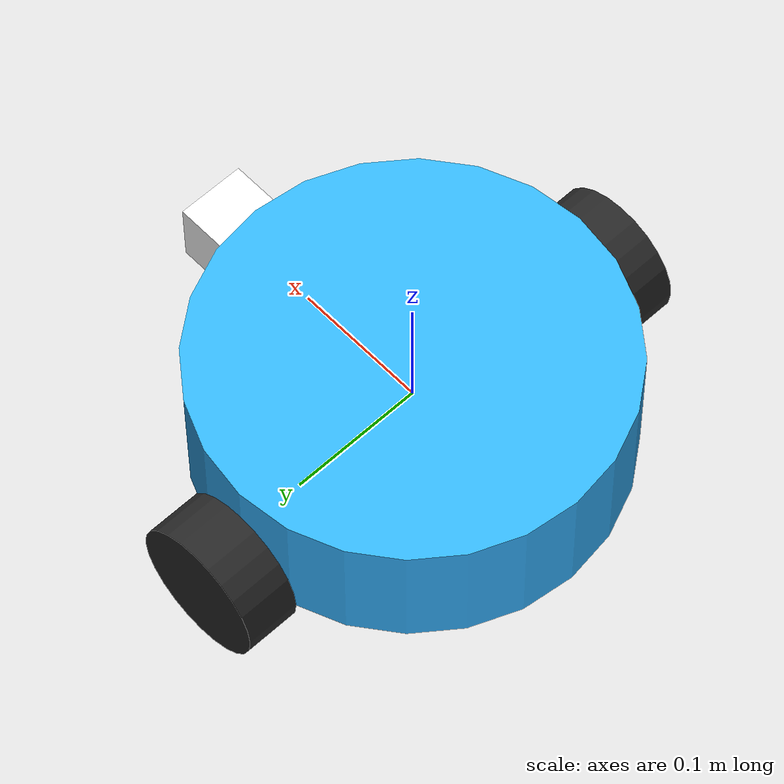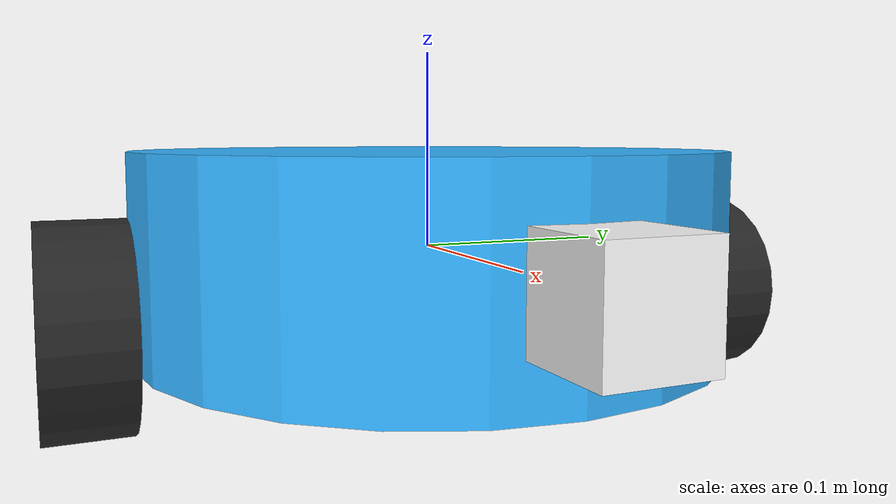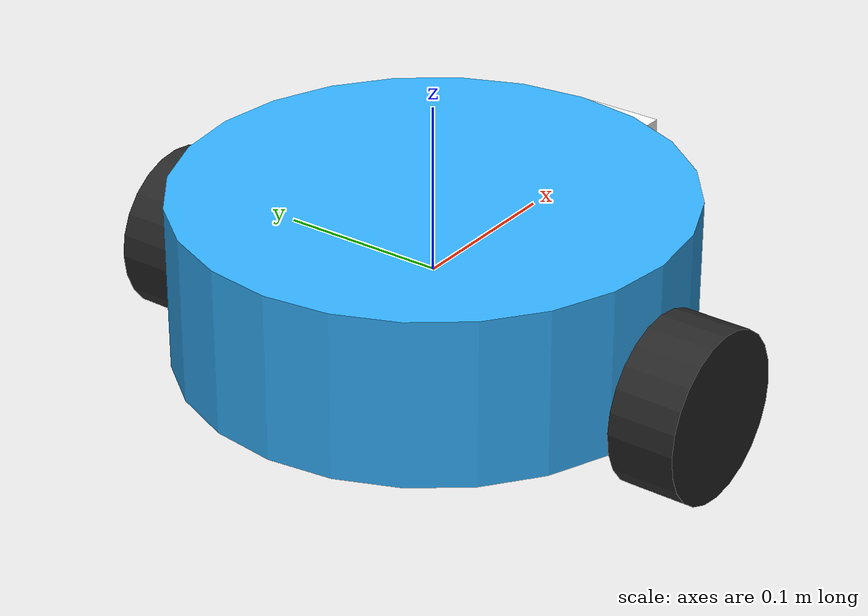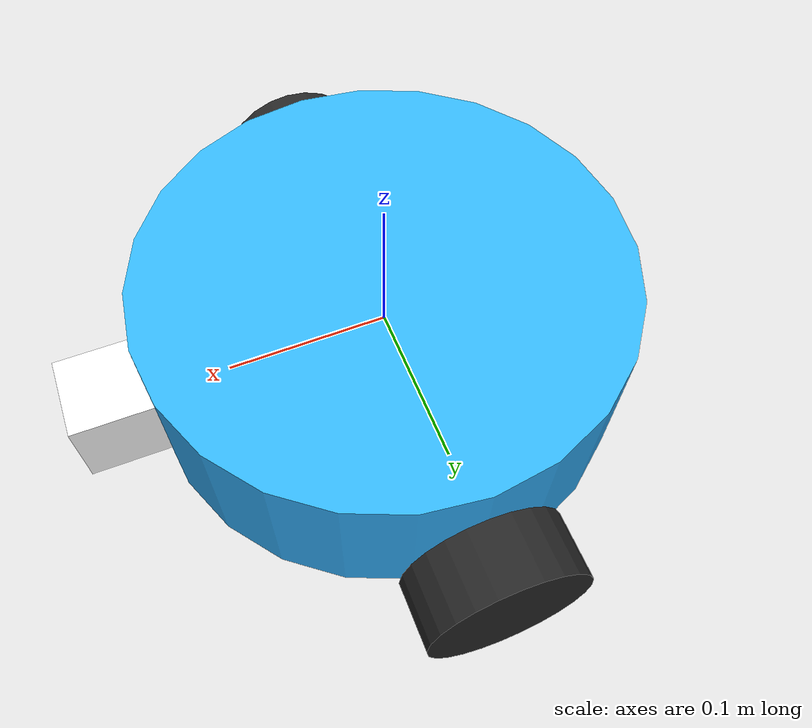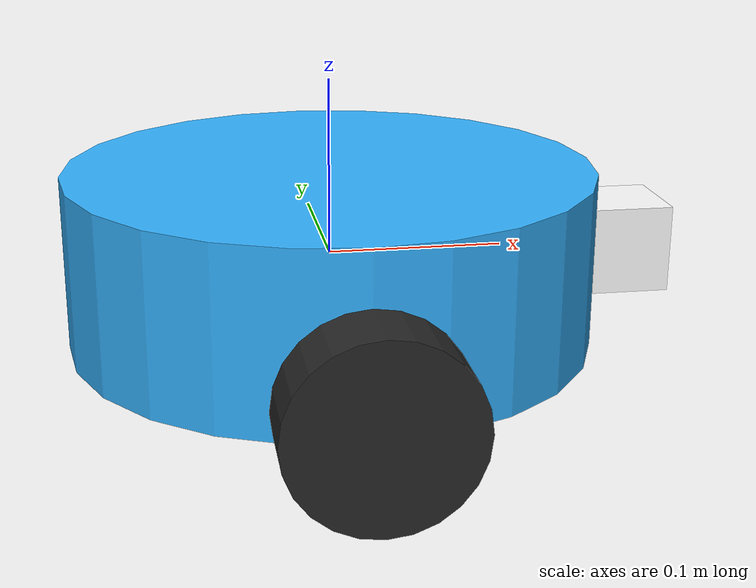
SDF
<?xml version="1.0"?>
<sdf version="1.6">
  <model name="robot1">

    <link name="base_link">
      <inertial>
        <mass>1.5</mass>
        <inertia><ixx>0.02</ixx><ixy>0</ixy><ixz>0</ixz>
                 <iyy>0.02</iyy><iyz>0</iyz><izz>0.03</izz></inertia>
      </inertial>
      <collision name="col">
        <geometry><cylinder><radius>0.15</radius><length>0.10</length></cylinder></geometry>
      </collision>
      <visual name="body">
        <geometry><cylinder><radius>0.15</radius><length>0.10</length></cylinder></geometry>
        <material>
          <ambient>0.2 0.7 1.0 1</ambient>
          <diffuse>0.2 0.7 1.0 1</diffuse>
        </material>
      </visual>
      <visual name="nose">
        <pose>0.16 0 0 0 0 0</pose>
        <geometry><box><size>0.07 0.05 0.05</size></box></geometry>
        <material><ambient>1 1 1 1</ambient><diffuse>1 1 1 1</diffuse></material>
      </visual>
    </link>

    <link name="left_wheel">
      <pose>0 0.17 -0.03 -1.5708 0 0</pose>
      <inertial><mass>0.1</mass>
        <inertia><ixx>0.0001</ixx><iyy>0.0001</iyy><izz>0.0001</izz></inertia>
      </inertial>
      <collision name="col">
        <geometry><cylinder><radius>0.05</radius><length>0.04</length></cylinder></geometry>
      </collision>
      <visual name="vis">
        <geometry><cylinder><radius>0.05</radius><length>0.04</length></cylinder></geometry>
        <material><ambient>0.15 0.15 0.15 1</ambient><diffuse>0.15 0.15 0.15 1</diffuse></material>
      </visual>
    </link>

    <link name="right_wheel">
      <pose>0 -0.17 -0.03 -1.5708 0 0</pose>
      <inertial><mass>0.1</mass>
        <inertia><ixx>0.0001</ixx><iyy>0.0001</iyy><izz>0.0001</izz></inertia>
      </inertial>
      <collision name="col">
        <geometry><cylinder><radius>0.05</radius><length>0.04</length></cylinder></geometry>
      </collision>
      <visual name="vis">
        <geometry><cylinder><radius>0.05</radius><length>0.04</length></cylinder></geometry>
        <material><ambient>0.15 0.15 0.15 1</ambient><diffuse>0.15 0.15 0.15 1</diffuse></material>
      </visual>
    </link>

    <joint name="left_wheel_joint" type="revolute">
      <parent>base_link</parent><child>left_wheel</child>
      <axis><xyz>0 0 1</xyz>
        <limit><lower>-1e16</lower><upper>1e16</upper></limit></axis>
    </joint>

    <joint name="right_wheel_joint" type="revolute">
      <parent>base_link</parent><child>right_wheel</child>
      <axis><xyz>0 0 1</xyz>
        <limit><lower>-1e16</lower><upper>1e16</upper></limit></axis>
    </joint>

    <!-- Explicit full topic paths so each robot gets its own scoped topic -->
    <plugin filename="gz-sim-diff-drive-system"
            name="gz::sim::systems::DiffDrive">
      <left_joint>left_wheel_joint</left_joint>
      <right_joint>right_wheel_joint</right_joint>
      <wheel_separation>0.34</wheel_separation>
      <wheel_radius>0.05</wheel_radius>
      <topic>/model/robot1/cmd_vel</topic>
    </plugin>

    <!-- Ground-truth odometry (model pose, not wheel encoders).
         Reference frame is the model's initial spawn pose,
         so robot_agent's wx = odom_x + start_x remains correct. -->
    <plugin filename="gz-sim-odometry-publisher-system"
            name="gz::sim::systems::OdometryPublisher">
      <odom_frame>odom</odom_frame>
      <robot_base_frame>robot1/base_link</robot_base_frame>
      <odom_publish_frequency>20</odom_publish_frequency>
      <odom_topic>/model/robot1/odometry</odom_topic>
      <dimensions>2</dimensions>
    </plugin>

  </model>
</sdf>
